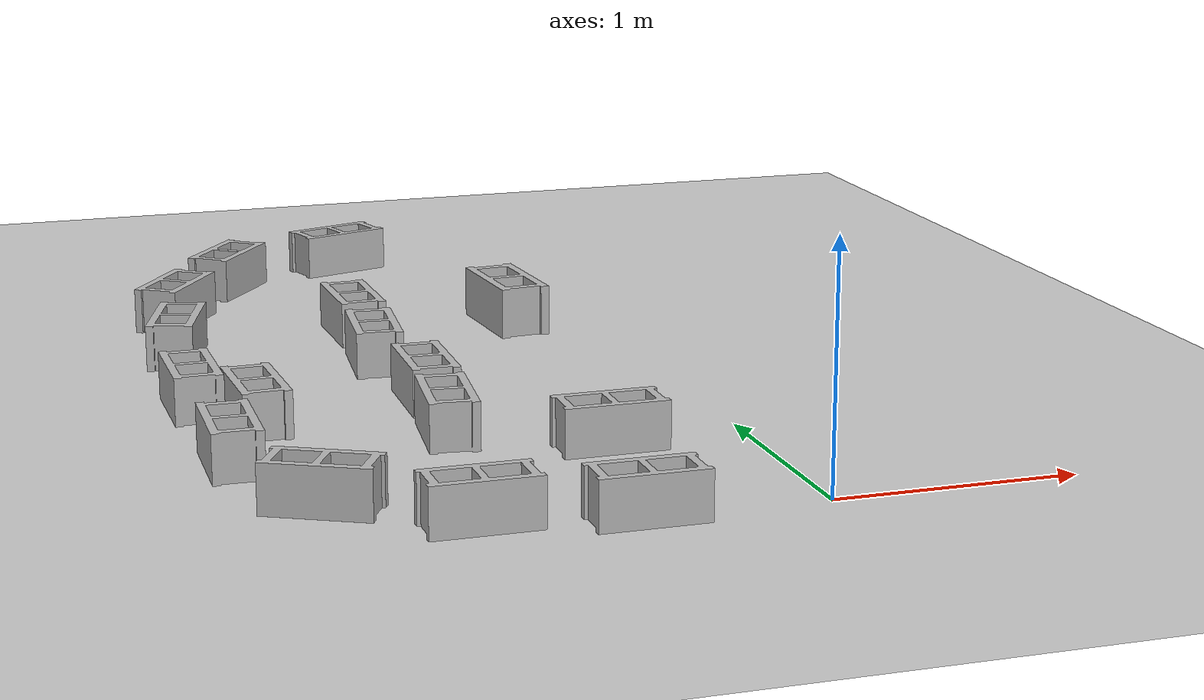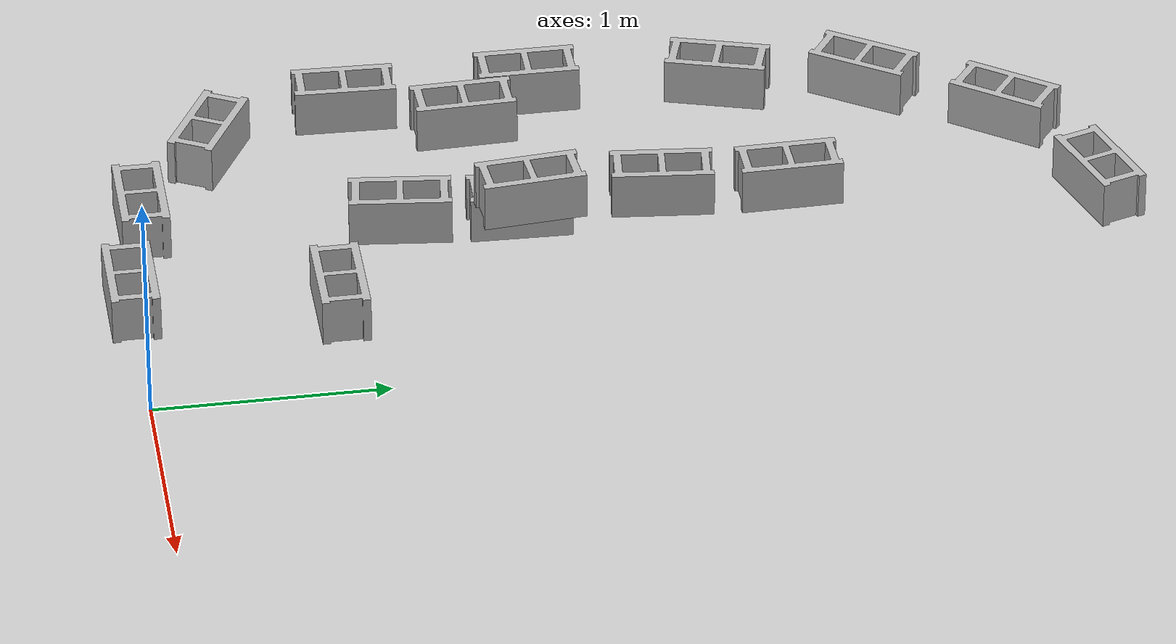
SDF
<sdf version="1.6">
 <world name="default">
  <model name="ground_plane">
   <static>1</static>
   <link name="link">
    <collision name="collision">
     <geometry><plane><normal>0 0 1</normal><size>100 100</size></plane></geometry>
     <surface><friction><ode><mu>100</mu><mu2>50</mu2></ode></friction></surface>
    </collision>
    <visual name="visual">
     <cast_shadows>0</cast_shadows>
     <geometry><plane><normal>0 0 1</normal><size>100 100</size></plane></geometry>
     <material>
      <script><uri>file://media/materials/scripts/gazebo.material</uri><name>Gazebo/Grey</name></script>
     </material>
    </visual>
   </link>
  </model>
  <model name="cinder_block">
   <link name="link">
    <inertial>
     <pose>0 0 0.1016 0 -0 0</pose>
     <mass>5</mass>
     <inertia>
      <ixx>0.028705</ixx>
      <ixy>0</ixy>
      <iyy>0.073708</iyy>
      <ixz>0</ixz>
      <iyz>0</iyz>
      <izz>0.06908</izz>
     </inertia>
    </inertial>
    <visual name="visual">
     <geometry><mesh><uri>model://cinder_block/meshes/cinder_block.dae</uri></mesh></geometry>
    </visual>
    <collision name="left">
     <pose>0 -0.08465 0.1016 0 -0 0</pose>
     <geometry><box><size>0.43495 0.0339 0.2032</size></box></geometry>
     <surface>
      <contact><ode><max_vel>0.1</max_vel><min_depth>0.001</min_depth></ode></contact>
      <friction><ode><mu>1</mu><mu2>1</mu2></ode></friction>
     </surface>
    </collision>
    <collision name="right">
     <pose>0 0.08465 0.1016 0 -0 0</pose>
     <geometry><box><size>0.43495 0.0339 0.2032</size></box></geometry>
     <surface>
      <contact><ode><max_vel>0.1</max_vel><min_depth>0.001</min_depth></ode></contact>
      <friction><ode><mu>1</mu><mu2>1</mu2></ode></friction>
     </surface>
    </collision>
    <collision name="front">
     <pose>0.18625 0 0.1016 0 -0 0</pose>
     <geometry><box><size>0.0339 0.1354 0.203</size></box></geometry>
     <surface>
      <contact><ode><max_vel>0.1</max_vel><min_depth>0.001</min_depth></ode></contact>
      <friction><ode><mu>1</mu><mu2>1</mu2></ode></friction>
     </surface>
    </collision>
    <collision name="middle">
     <pose>0 0 0.1016 0 -0 0</pose>
     <geometry><box><size>0.0339 0.1354 0.203</size></box></geometry>
     <surface>
      <contact><ode><max_vel>0.1</max_vel><min_depth>0.001</min_depth></ode></contact>
      <friction><ode><mu>1</mu><mu2>1</mu2></ode></friction>
     </surface>
    </collision>
    <collision name="back">
     <pose>-0.18625 0 0.1016 0 -0 0</pose>
     <geometry><box><size>0.0339 0.1354 0.203</size></box></geometry>
     <surface>
      <contact><ode><max_vel>0.1</max_vel><min_depth>0.001</min_depth></ode></contact>
      <friction><ode><mu>1</mu><mu2>1</mu2></ode></friction>
     </surface>
    </collision>
   </link>
   <pose>-0.720374 -2.1e-05 -6e-06 -1e-06 2.9e-05 0</pose>
  </model>
  <model name="cinder_block_0">
   <link name="link">
    <inertial>
     <pose>0 0 0.1016 0 -0 0</pose>
     <mass>5</mass>
     <inertia>
      <ixx>0.028705</ixx>
      <ixy>0</ixy>
      <iyy>0.073708</iyy>
      <ixz>0</ixz>
      <iyz>0</iyz>
      <izz>0.06908</izz>
     </inertia>
    </inertial>
    <visual name="visual">
     <geometry><mesh><uri>model://cinder_block/meshes/cinder_block.dae</uri></mesh></geometry>
    </visual>
    <collision name="left">
     <pose>0 -0.08465 0.1016 0 -0 0</pose>
     <geometry><box><size>0.43495 0.0339 0.2032</size></box></geometry>
     <surface>
      <contact><ode><max_vel>0.1</max_vel><min_depth>0.001</min_depth></ode></contact>
      <friction><ode><mu>1</mu><mu2>1</mu2></ode></friction>
     </surface>
    </collision>
    <collision name="right">
     <pose>0 0.08465 0.1016 0 -0 0</pose>
     <geometry><box><size>0.43495 0.0339 0.2032</size></box></geometry>
     <surface>
      <contact><ode><max_vel>0.1</max_vel><min_depth>0.001</min_depth></ode></contact>
      <friction><ode><mu>1</mu><mu2>1</mu2></ode></friction>
     </surface>
    </collision>
    <collision name="front">
     <pose>0.18625 0 0.1016 0 -0 0</pose>
     <geometry><box><size>0.0339 0.1354 0.203</size></box></geometry>
     <surface>
      <contact><ode><max_vel>0.1</max_vel><min_depth>0.001</min_depth></ode></contact>
      <friction><ode><mu>1</mu><mu2>1</mu2></ode></friction>
     </surface>
    </collision>
    <collision name="middle">
     <pose>0 0 0.1016 0 -0 0</pose>
     <geometry><box><size>0.0339 0.1354 0.203</size></box></geometry>
     <surface>
      <contact><ode><max_vel>0.1</max_vel><min_depth>0.001</min_depth></ode></contact>
      <friction><ode><mu>1</mu><mu2>1</mu2></ode></friction>
     </surface>
    </collision>
    <collision name="back">
     <pose>-0.18625 0 0.1016 0 -0 0</pose>
     <geometry><box><size>0.0339 0.1354 0.203</size></box></geometry>
     <surface>
      <contact><ode><max_vel>0.1</max_vel><min_depth>0.001</min_depth></ode></contact>
      <friction><ode><mu>1</mu><mu2>1</mu2></ode></friction>
     </surface>
    </collision>
   </link>
   <pose>-1.31103 0.104421 -6e-06 -1e-06 2.9e-05 0</pose>
  </model>
  <model name="cinder_block_1">
   <link name="link">
    <inertial>
     <pose>0 0 0.1016 0 -0 0</pose>
     <mass>5</mass>
     <inertia>
      <ixx>0.028705</ixx>
      <ixy>0</ixy>
      <iyy>0.073708</iyy>
      <ixz>0</ixz>
      <iyz>0</iyz>
      <izz>0.06908</izz>
     </inertia>
    </inertial>
    <visual name="visual">
     <geometry><mesh><uri>model://cinder_block/meshes/cinder_block.dae</uri></mesh></geometry>
    </visual>
    <collision name="left">
     <pose>0 -0.08465 0.1016 0 -0 0</pose>
     <geometry><box><size>0.43495 0.0339 0.2032</size></box></geometry>
     <surface>
      <contact><ode><max_vel>0.1</max_vel><min_depth>0.001</min_depth></ode></contact>
      <friction><ode><mu>1</mu><mu2>1</mu2></ode></friction>
     </surface>
    </collision>
    <collision name="right">
     <pose>0 0.08465 0.1016 0 -0 0</pose>
     <geometry><box><size>0.43495 0.0339 0.2032</size></box></geometry>
     <surface>
      <contact><ode><max_vel>0.1</max_vel><min_depth>0.001</min_depth></ode></contact>
      <friction><ode><mu>1</mu><mu2>1</mu2></ode></friction>
     </surface>
    </collision>
    <collision name="front">
     <pose>0.18625 0 0.1016 0 -0 0</pose>
     <geometry><box><size>0.0339 0.1354 0.203</size></box></geometry>
     <surface>
      <contact><ode><max_vel>0.1</max_vel><min_depth>0.001</min_depth></ode></contact>
      <friction><ode><mu>1</mu><mu2>1</mu2></ode></friction>
     </surface>
    </collision>
    <collision name="middle">
     <pose>0 0 0.1016 0 -0 0</pose>
     <geometry><box><size>0.0339 0.1354 0.203</size></box></geometry>
     <surface>
      <contact><ode><max_vel>0.1</max_vel><min_depth>0.001</min_depth></ode></contact>
      <friction><ode><mu>1</mu><mu2>1</mu2></ode></friction>
     </surface>
    </collision>
    <collision name="back">
     <pose>-0.18625 0 0.1016 0 -0 0</pose>
     <geometry><box><size>0.0339 0.1354 0.203</size></box></geometry>
     <surface>
      <contact><ode><max_vel>0.1</max_vel><min_depth>0.001</min_depth></ode></contact>
      <friction><ode><mu>1</mu><mu2>1</mu2></ode></friction>
     </surface>
    </collision>
   </link>
   <pose>-1.8114 0.44481 -6e-06 -1e-05 2.5e-05 -0.487627</pose>
  </model>
  <model name="cinder_block_7">
   <link name="link">
    <inertial>
     <pose>0 0 0.1016 0 -0 0</pose>
     <mass>5</mass>
     <inertia>
      <ixx>0.028705</ixx>
      <ixy>0</ixy>
      <iyy>0.073708</iyy>
      <ixz>0</ixz>
      <iyz>0</iyz>
      <izz>0.06908</izz>
     </inertia>
    </inertial>
    <visual name="visual">
     <geometry><mesh><uri>model://cinder_block/meshes/cinder_block.dae</uri></mesh></geometry>
    </visual>
    <collision name="left">
     <pose>0 -0.08465 0.1016 0 -0 0</pose>
     <geometry><box><size>0.43495 0.0339 0.2032</size></box></geometry>
     <surface>
      <contact><ode><max_vel>0.1</max_vel><min_depth>0.001</min_depth></ode></contact>
      <friction><ode><mu>1</mu><mu2>1</mu2></ode></friction>
     </surface>
    </collision>
    <collision name="right">
     <pose>0 0.08465 0.1016 0 -0 0</pose>
     <geometry><box><size>0.43495 0.0339 0.2032</size></box></geometry>
     <surface>
      <contact><ode><max_vel>0.1</max_vel><min_depth>0.001</min_depth></ode></contact>
      <friction><ode><mu>1</mu><mu2>1</mu2></ode></friction>
     </surface>
    </collision>
    <collision name="front">
     <pose>0.18625 0 0.1016 0 -0 0</pose>
     <geometry><box><size>0.0339 0.1354 0.203</size></box></geometry>
     <surface>
      <contact><ode><max_vel>0.1</max_vel><min_depth>0.001</min_depth></ode></contact>
      <friction><ode><mu>1</mu><mu2>1</mu2></ode></friction>
     </surface>
    </collision>
    <collision name="middle">
     <pose>0 0 0.1016 0 -0 0</pose>
     <geometry><box><size>0.0339 0.1354 0.203</size></box></geometry>
     <surface>
      <contact><ode><max_vel>0.1</max_vel><min_depth>0.001</min_depth></ode></contact>
      <friction><ode><mu>1</mu><mu2>1</mu2></ode></friction>
     </surface>
    </collision>
    <collision name="back">
     <pose>-0.18625 0 0.1016 0 -0 0</pose>
     <geometry><box><size>0.0339 0.1354 0.203</size></box></geometry>
     <surface>
      <contact><ode><max_vel>0.1</max_vel><min_depth>0.001</min_depth></ode></contact>
      <friction><ode><mu>1</mu><mu2>1</mu2></ode></friction>
     </surface>
    </collision>
   </link>
   <pose>-2.04034 1.05442 -6e-06 -3e-05 -1e-06 -1.59941</pose>
  </model>
  <model name="cinder_block_8">
   <link name="link">
    <inertial>
     <pose>0 0 0.1016 0 -0 0</pose>
     <mass>5</mass>
     <inertia>
      <ixx>0.028705</ixx>
      <ixy>0</ixy>
      <iyy>0.073708</iyy>
      <ixz>0</ixz>
      <iyz>0</iyz>
      <izz>0.06908</izz>
     </inertia>
    </inertial>
    <visual name="visual">
     <geometry><mesh><uri>model://cinder_block/meshes/cinder_block.dae</uri></mesh></geometry>
    </visual>
    <collision name="left">
     <pose>0 -0.08465 0.1016 0 -0 0</pose>
     <geometry><box><size>0.43495 0.0339 0.2032</size></box></geometry>
     <surface>
      <contact><ode><max_vel>0.1</max_vel><min_depth>0.001</min_depth></ode></contact>
      <friction><ode><mu>1</mu><mu2>1</mu2></ode></friction>
     </surface>
    </collision>
    <collision name="right">
     <pose>0 0.08465 0.1016 0 -0 0</pose>
     <geometry><box><size>0.43495 0.0339 0.2032</size></box></geometry>
     <surface>
      <contact><ode><max_vel>0.1</max_vel><min_depth>0.001</min_depth></ode></contact>
      <friction><ode><mu>1</mu><mu2>1</mu2></ode></friction>
     </surface>
    </collision>
    <collision name="front">
     <pose>0.18625 0 0.1016 0 -0 0</pose>
     <geometry><box><size>0.0339 0.1354 0.203</size></box></geometry>
     <surface>
      <contact><ode><max_vel>0.1</max_vel><min_depth>0.001</min_depth></ode></contact>
      <friction><ode><mu>1</mu><mu2>1</mu2></ode></friction>
     </surface>
    </collision>
    <collision name="middle">
     <pose>0 0 0.1016 0 -0 0</pose>
     <geometry><box><size>0.0339 0.1354 0.203</size></box></geometry>
     <surface>
      <contact><ode><max_vel>0.1</max_vel><min_depth>0.001</min_depth></ode></contact>
      <friction><ode><mu>1</mu><mu2>1</mu2></ode></friction>
     </surface>
    </collision>
    <collision name="back">
     <pose>-0.18625 0 0.1016 0 -0 0</pose>
     <geometry><box><size>0.0339 0.1354 0.203</size></box></geometry>
     <surface>
      <contact><ode><max_vel>0.1</max_vel><min_depth>0.001</min_depth></ode></contact>
      <friction><ode><mu>1</mu><mu2>1</mu2></ode></friction>
     </surface>
    </collision>
   </link>
   <pose>-2.06265 1.85109 -6e-06 -3e-05 -1e-06 -1.57236</pose>
  </model>
  <model name="cinder_block_12">
   <link name="link">
    <inertial>
     <pose>0 0 0.1016 0 -0 0</pose>
     <mass>5</mass>
     <inertia>
      <ixx>0.028705</ixx>
      <ixy>0</ixy>
      <iyy>0.073708</iyy>
      <ixz>0</ixz>
      <iyz>0</iyz>
      <izz>0.06908</izz>
     </inertia>
    </inertial>
    <visual name="visual">
     <geometry><mesh><uri>model://cinder_block/meshes/cinder_block.dae</uri></mesh></geometry>
    </visual>
    <collision name="left">
     <pose>0 -0.08465 0.1016 0 -0 0</pose>
     <geometry><box><size>0.43495 0.0339 0.2032</size></box></geometry>
     <surface>
      <contact><ode><max_vel>0.1</max_vel><min_depth>0.001</min_depth></ode></contact>
      <friction><ode><mu>1</mu><mu2>1</mu2></ode></friction>
     </surface>
    </collision>
    <collision name="right">
     <pose>0 0.08465 0.1016 0 -0 0</pose>
     <geometry><box><size>0.43495 0.0339 0.2032</size></box></geometry>
     <surface>
      <contact><ode><max_vel>0.1</max_vel><min_depth>0.001</min_depth></ode></contact>
      <friction><ode><mu>1</mu><mu2>1</mu2></ode></friction>
     </surface>
    </collision>
    <collision name="front">
     <pose>0.18625 0 0.1016 0 -0 0</pose>
     <geometry><box><size>0.0339 0.1354 0.203</size></box></geometry>
     <surface>
      <contact><ode><max_vel>0.1</max_vel><min_depth>0.001</min_depth></ode></contact>
      <friction><ode><mu>1</mu><mu2>1</mu2></ode></friction>
     </surface>
    </collision>
    <collision name="middle">
     <pose>0 0 0.1016 0 -0 0</pose>
     <geometry><box><size>0.0339 0.1354 0.203</size></box></geometry>
     <surface>
      <contact><ode><max_vel>0.1</max_vel><min_depth>0.001</min_depth></ode></contact>
      <friction><ode><mu>1</mu><mu2>1</mu2></ode></friction>
     </surface>
    </collision>
    <collision name="back">
     <pose>-0.18625 0 0.1016 0 -0 0</pose>
     <geometry><box><size>0.0339 0.1354 0.203</size></box></geometry>
     <surface>
      <contact><ode><max_vel>0.1</max_vel><min_depth>0.001</min_depth></ode></contact>
      <friction><ode><mu>1</mu><mu2>1</mu2></ode></friction>
     </surface>
    </collision>
   </link>
   <pose>-0.577262 0.856201 -6e-06 -1e-06 2.8e-05 -0</pose>
  </model>
  <model name="cinder_block_13">
   <link name="link">
    <inertial>
     <pose>0 0 0.1016 0 -0 0</pose>
     <mass>5</mass>
     <inertia>
      <ixx>0.028705</ixx>
      <ixy>0</ixy>
      <iyy>0.073708</iyy>
      <ixz>0</ixz>
      <iyz>0</iyz>
      <izz>0.06908</izz>
     </inertia>
    </inertial>
    <visual name="visual">
     <geometry><mesh><uri>model://cinder_block/meshes/cinder_block.dae</uri></mesh></geometry>
    </visual>
    <collision name="left">
     <pose>0 -0.08465 0.1016 0 -0 0</pose>
     <geometry><box><size>0.43495 0.0339 0.2032</size></box></geometry>
     <surface>
      <contact><ode><max_vel>0.1</max_vel><min_depth>0.001</min_depth></ode></contact>
      <friction><ode><mu>1</mu><mu2>1</mu2></ode></friction>
     </surface>
    </collision>
    <collision name="right">
     <pose>0 0.08465 0.1016 0 -0 0</pose>
     <geometry><box><size>0.43495 0.0339 0.2032</size></box></geometry>
     <surface>
      <contact><ode><max_vel>0.1</max_vel><min_depth>0.001</min_depth></ode></contact>
      <friction><ode><mu>1</mu><mu2>1</mu2></ode></friction>
     </surface>
    </collision>
    <collision name="front">
     <pose>0.18625 0 0.1016 0 -0 0</pose>
     <geometry><box><size>0.0339 0.1354 0.203</size></box></geometry>
     <surface>
      <contact><ode><max_vel>0.1</max_vel><min_depth>0.001</min_depth></ode></contact>
      <friction><ode><mu>1</mu><mu2>1</mu2></ode></friction>
     </surface>
    </collision>
    <collision name="middle">
     <pose>0 0 0.1016 0 -0 0</pose>
     <geometry><box><size>0.0339 0.1354 0.203</size></box></geometry>
     <surface>
      <contact><ode><max_vel>0.1</max_vel><min_depth>0.001</min_depth></ode></contact>
      <friction><ode><mu>1</mu><mu2>1</mu2></ode></friction>
     </surface>
    </collision>
    <collision name="back">
     <pose>-0.18625 0 0.1016 0 -0 0</pose>
     <geometry><box><size>0.0339 0.1354 0.203</size></box></geometry>
     <surface>
      <contact><ode><max_vel>0.1</max_vel><min_depth>0.001</min_depth></ode></contact>
      <friction><ode><mu>1</mu><mu2>1</mu2></ode></friction>
     </surface>
    </collision>
   </link>
   <pose>-1.84874 1.54636 -6e-06 -2.9e-05 1e-06 -1.53726</pose>
  </model>
  <model name="cinder_block_14">
   <link name="link">
    <inertial>
     <pose>0 0 0.1016 0 -0 0</pose>
     <mass>5</mass>
     <inertia>
      <ixx>0.028705</ixx>
      <ixy>0</ixy>
      <iyy>0.073708</iyy>
      <ixz>0</ixz>
      <iyz>0</iyz>
      <izz>0.06908</izz>
     </inertia>
    </inertial>
    <visual name="visual">
     <geometry><mesh><uri>model://cinder_block/meshes/cinder_block.dae</uri></mesh></geometry>
    </visual>
    <collision name="left">
     <pose>0 -0.08465 0.1016 0 -0 0</pose>
     <geometry><box><size>0.43495 0.0339 0.2032</size></box></geometry>
     <surface>
      <contact><ode><max_vel>0.1</max_vel><min_depth>0.001</min_depth></ode></contact>
      <friction><ode><mu>1</mu><mu2>1</mu2></ode></friction>
     </surface>
    </collision>
    <collision name="right">
     <pose>0 0.08465 0.1016 0 -0 0</pose>
     <geometry><box><size>0.43495 0.0339 0.2032</size></box></geometry>
     <surface>
      <contact><ode><max_vel>0.1</max_vel><min_depth>0.001</min_depth></ode></contact>
      <friction><ode><mu>1</mu><mu2>1</mu2></ode></friction>
     </surface>
    </collision>
    <collision name="front">
     <pose>0.18625 0 0.1016 0 -0 0</pose>
     <geometry><box><size>0.0339 0.1354 0.203</size></box></geometry>
     <surface>
      <contact><ode><max_vel>0.1</max_vel><min_depth>0.001</min_depth></ode></contact>
      <friction><ode><mu>1</mu><mu2>1</mu2></ode></friction>
     </surface>
    </collision>
    <collision name="middle">
     <pose>0 0 0.1016 0 -0 0</pose>
     <geometry><box><size>0.0339 0.1354 0.203</size></box></geometry>
     <surface>
      <contact><ode><max_vel>0.1</max_vel><min_depth>0.001</min_depth></ode></contact>
      <friction><ode><mu>1</mu><mu2>1</mu2></ode></friction>
     </surface>
    </collision>
    <collision name="back">
     <pose>-0.18625 0 0.1016 0 -0 0</pose>
     <geometry><box><size>0.0339 0.1354 0.203</size></box></geometry>
     <surface>
      <contact><ode><max_vel>0.1</max_vel><min_depth>0.001</min_depth></ode></contact>
      <friction><ode><mu>1</mu><mu2>1</mu2></ode></friction>
     </surface>
    </collision>
   </link>
   <pose>-0.760176 1.6809 0.309529 0 -0 1.65816</pose>
  </model>
  <model name="cinder_block_21">
   <link name="link">
    <inertial>
     <pose>0 0 0.1016 0 -0 0</pose>
     <mass>5</mass>
     <inertia>
      <ixx>0.028705</ixx>
      <ixy>0</ixy>
      <iyy>0.073708</iyy>
      <ixz>0</ixz>
      <iyz>0</iyz>
      <izz>0.06908</izz>
     </inertia>
    </inertial>
    <visual name="visual">
     <geometry><mesh><uri>model://cinder_block/meshes/cinder_block.dae</uri></mesh></geometry>
    </visual>
    <collision name="left">
     <pose>0 -0.08465 0.1016 0 -0 0</pose>
     <geometry><box><size>0.43495 0.0339 0.2032</size></box></geometry>
     <surface>
      <contact><ode><max_vel>0.1</max_vel><min_depth>0.001</min_depth></ode></contact>
      <friction><ode><mu>1</mu><mu2>1</mu2></ode></friction>
     </surface>
    </collision>
    <collision name="right">
     <pose>0 0.08465 0.1016 0 -0 0</pose>
     <geometry><box><size>0.43495 0.0339 0.2032</size></box></geometry>
     <surface>
      <contact><ode><max_vel>0.1</max_vel><min_depth>0.001</min_depth></ode></contact>
      <friction><ode><mu>1</mu><mu2>1</mu2></ode></friction>
     </surface>
    </collision>
    <collision name="front">
     <pose>0.18625 0 0.1016 0 -0 0</pose>
     <geometry><box><size>0.0339 0.1354 0.203</size></box></geometry>
     <surface>
      <contact><ode><max_vel>0.1</max_vel><min_depth>0.001</min_depth></ode></contact>
      <friction><ode><mu>1</mu><mu2>1</mu2></ode></friction>
     </surface>
    </collision>
    <collision name="middle">
     <pose>0 0 0.1016 0 -0 0</pose>
     <geometry><box><size>0.0339 0.1354 0.203</size></box></geometry>
     <surface>
      <contact><ode><max_vel>0.1</max_vel><min_depth>0.001</min_depth></ode></contact>
      <friction><ode><mu>1</mu><mu2>1</mu2></ode></friction>
     </surface>
    </collision>
    <collision name="back">
     <pose>-0.18625 0 0.1016 0 -0 0</pose>
     <geometry><box><size>0.0339 0.1354 0.203</size></box></geometry>
     <surface>
      <contact><ode><max_vel>0.1</max_vel><min_depth>0.001</min_depth></ode></contact>
      <friction><ode><mu>1</mu><mu2>1</mu2></ode></friction>
     </surface>
    </collision>
   </link>
   <pose>-0.957554 4.14361 0 0 -0 0.311894</pose>
  </model>
  <model name="cinder_block_22">
   <link name="link">
    <inertial>
     <pose>0 0 0.1016 0 -0 0</pose>
     <mass>5</mass>
     <inertia>
      <ixx>0.028705</ixx>
      <ixy>0</ixy>
      <iyy>0.073708</iyy>
      <ixz>0</ixz>
      <iyz>0</iyz>
      <izz>0.06908</izz>
     </inertia>
    </inertial>
    <visual name="visual">
     <geometry><mesh><uri>model://cinder_block/meshes/cinder_block.dae</uri></mesh></geometry>
    </visual>
    <collision name="left">
     <pose>0 -0.08465 0.1016 0 -0 0</pose>
     <geometry><box><size>0.43495 0.0339 0.2032</size></box></geometry>
     <surface>
      <contact><ode><max_vel>0.1</max_vel><min_depth>0.001</min_depth></ode></contact>
      <friction><ode><mu>1</mu><mu2>1</mu2></ode></friction>
     </surface>
    </collision>
    <collision name="right">
     <pose>0 0.08465 0.1016 0 -0 0</pose>
     <geometry><box><size>0.43495 0.0339 0.2032</size></box></geometry>
     <surface>
      <contact><ode><max_vel>0.1</max_vel><min_depth>0.001</min_depth></ode></contact>
      <friction><ode><mu>1</mu><mu2>1</mu2></ode></friction>
     </surface>
    </collision>
    <collision name="front">
     <pose>0.18625 0 0.1016 0 -0 0</pose>
     <geometry><box><size>0.0339 0.1354 0.203</size></box></geometry>
     <surface>
      <contact><ode><max_vel>0.1</max_vel><min_depth>0.001</min_depth></ode></contact>
      <friction><ode><mu>1</mu><mu2>1</mu2></ode></friction>
     </surface>
    </collision>
    <collision name="middle">
     <pose>0 0 0.1016 0 -0 0</pose>
     <geometry><box><size>0.0339 0.1354 0.203</size></box></geometry>
     <surface>
      <contact><ode><max_vel>0.1</max_vel><min_depth>0.001</min_depth></ode></contact>
      <friction><ode><mu>1</mu><mu2>1</mu2></ode></friction>
     </surface>
    </collision>
    <collision name="back">
     <pose>-0.18625 0 0.1016 0 -0 0</pose>
     <geometry><box><size>0.0339 0.1354 0.203</size></box></geometry>
     <surface>
      <contact><ode><max_vel>0.1</max_vel><min_depth>0.001</min_depth></ode></contact>
      <friction><ode><mu>1</mu><mu2>1</mu2></ode></friction>
     </surface>
    </collision>
   </link>
   <pose>-1.56465 3.85347 0 0 -0 0.934526</pose>
  </model>
  <model name="cinder_block_23">
   <link name="link">
    <inertial>
     <pose>0 0 0.1016 0 -0 0</pose>
     <mass>5</mass>
     <inertia>
      <ixx>0.028705</ixx>
      <ixy>0</ixy>
      <iyy>0.073708</iyy>
      <ixz>0</ixz>
      <iyz>0</iyz>
      <izz>0.06908</izz>
     </inertia>
    </inertial>
    <visual name="visual">
     <geometry><mesh><uri>model://cinder_block/meshes/cinder_block.dae</uri></mesh></geometry>
    </visual>
    <collision name="left">
     <pose>0 -0.08465 0.1016 0 -0 0</pose>
     <geometry><box><size>0.43495 0.0339 0.2032</size></box></geometry>
     <surface>
      <contact><ode><max_vel>0.1</max_vel><min_depth>0.001</min_depth></ode></contact>
      <friction><ode><mu>1</mu><mu2>1</mu2></ode></friction>
     </surface>
    </collision>
    <collision name="right">
     <pose>0 0.08465 0.1016 0 -0 0</pose>
     <geometry><box><size>0.43495 0.0339 0.2032</size></box></geometry>
     <surface>
      <contact><ode><max_vel>0.1</max_vel><min_depth>0.001</min_depth></ode></contact>
      <friction><ode><mu>1</mu><mu2>1</mu2></ode></friction>
     </surface>
    </collision>
    <collision name="front">
     <pose>0.18625 0 0.1016 0 -0 0</pose>
     <geometry><box><size>0.0339 0.1354 0.203</size></box></geometry>
     <surface>
      <contact><ode><max_vel>0.1</max_vel><min_depth>0.001</min_depth></ode></contact>
      <friction><ode><mu>1</mu><mu2>1</mu2></ode></friction>
     </surface>
    </collision>
    <collision name="middle">
     <pose>0 0 0.1016 0 -0 0</pose>
     <geometry><box><size>0.0339 0.1354 0.203</size></box></geometry>
     <surface>
      <contact><ode><max_vel>0.1</max_vel><min_depth>0.001</min_depth></ode></contact>
      <friction><ode><mu>1</mu><mu2>1</mu2></ode></friction>
     </surface>
    </collision>
    <collision name="back">
     <pose>-0.18625 0 0.1016 0 -0 0</pose>
     <geometry><box><size>0.0339 0.1354 0.203</size></box></geometry>
     <surface>
      <contact><ode><max_vel>0.1</max_vel><min_depth>0.001</min_depth></ode></contact>
      <friction><ode><mu>1</mu><mu2>1</mu2></ode></friction>
     </surface>
    </collision>
   </link>
   <pose>-1.90462 3.30054 0 0 -0 0.978229</pose>
  </model>
  <model name="cinder_block_24">
   <link name="link">
    <inertial>
     <pose>0 0 0.1016 0 -0 0</pose>
     <mass>5</mass>
     <inertia>
      <ixx>0.028705</ixx>
      <ixy>0</ixy>
      <iyy>0.073708</iyy>
      <ixz>0</ixz>
      <iyz>0</iyz>
      <izz>0.06908</izz>
     </inertia>
    </inertial>
    <visual name="visual">
     <geometry><mesh><uri>model://cinder_block/meshes/cinder_block.dae</uri></mesh></geometry>
    </visual>
    <collision name="left">
     <pose>0 -0.08465 0.1016 0 -0 0</pose>
     <geometry><box><size>0.43495 0.0339 0.2032</size></box></geometry>
     <surface>
      <contact><ode><max_vel>0.1</max_vel><min_depth>0.001</min_depth></ode></contact>
      <friction><ode><mu>1</mu><mu2>1</mu2></ode></friction>
     </surface>
    </collision>
    <collision name="right">
     <pose>0 0.08465 0.1016 0 -0 0</pose>
     <geometry><box><size>0.43495 0.0339 0.2032</size></box></geometry>
     <surface>
      <contact><ode><max_vel>0.1</max_vel><min_depth>0.001</min_depth></ode></contact>
      <friction><ode><mu>1</mu><mu2>1</mu2></ode></friction>
     </surface>
    </collision>
    <collision name="front">
     <pose>0.18625 0 0.1016 0 -0 0</pose>
     <geometry><box><size>0.0339 0.1354 0.203</size></box></geometry>
     <surface>
      <contact><ode><max_vel>0.1</max_vel><min_depth>0.001</min_depth></ode></contact>
      <friction><ode><mu>1</mu><mu2>1</mu2></ode></friction>
     </surface>
    </collision>
    <collision name="middle">
     <pose>0 0 0.1016 0 -0 0</pose>
     <geometry><box><size>0.0339 0.1354 0.203</size></box></geometry>
     <surface>
      <contact><ode><max_vel>0.1</max_vel><min_depth>0.001</min_depth></ode></contact>
      <friction><ode><mu>1</mu><mu2>1</mu2></ode></friction>
     </surface>
    </collision>
    <collision name="back">
     <pose>-0.18625 0 0.1016 0 -0 0</pose>
     <geometry><box><size>0.0339 0.1354 0.203</size></box></geometry>
     <surface>
      <contact><ode><max_vel>0.1</max_vel><min_depth>0.001</min_depth></ode></contact>
      <friction><ode><mu>1</mu><mu2>1</mu2></ode></friction>
     </surface>
    </collision>
   </link>
   <pose>-1.99567 2.67467 0 0 -0 1.27084</pose>
  </model>
  <model name="cinder_block_25">
   <link name="link">
    <inertial>
     <pose>0 0 0.1016 0 -0 0</pose>
     <mass>5</mass>
     <inertia>
      <ixx>0.028705</ixx>
      <ixy>0</ixy>
      <iyy>0.073708</iyy>
      <ixz>0</ixz>
      <iyz>0</iyz>
      <izz>0.06908</izz>
     </inertia>
    </inertial>
    <visual name="visual">
     <geometry><mesh><uri>model://cinder_block/meshes/cinder_block.dae</uri></mesh></geometry>
    </visual>
    <collision name="left">
     <pose>0 -0.08465 0.1016 0 -0 0</pose>
     <geometry><box><size>0.43495 0.0339 0.2032</size></box></geometry>
     <surface>
      <contact><ode><max_vel>0.1</max_vel><min_depth>0.001</min_depth></ode></contact>
      <friction><ode><mu>1</mu><mu2>1</mu2></ode></friction>
     </surface>
    </collision>
    <collision name="right">
     <pose>0 0.08465 0.1016 0 -0 0</pose>
     <geometry><box><size>0.43495 0.0339 0.2032</size></box></geometry>
     <surface>
      <contact><ode><max_vel>0.1</max_vel><min_depth>0.001</min_depth></ode></contact>
      <friction><ode><mu>1</mu><mu2>1</mu2></ode></friction>
     </surface>
    </collision>
    <collision name="front">
     <pose>0.18625 0 0.1016 0 -0 0</pose>
     <geometry><box><size>0.0339 0.1354 0.203</size></box></geometry>
     <surface>
      <contact><ode><max_vel>0.1</max_vel><min_depth>0.001</min_depth></ode></contact>
      <friction><ode><mu>1</mu><mu2>1</mu2></ode></friction>
     </surface>
    </collision>
    <collision name="middle">
     <pose>0 0 0.1016 0 -0 0</pose>
     <geometry><box><size>0.0339 0.1354 0.203</size></box></geometry>
     <surface>
      <contact><ode><max_vel>0.1</max_vel><min_depth>0.001</min_depth></ode></contact>
      <friction><ode><mu>1</mu><mu2>1</mu2></ode></friction>
     </surface>
    </collision>
    <collision name="back">
     <pose>-0.18625 0 0.1016 0 -0 0</pose>
     <geometry><box><size>0.0339 0.1354 0.203</size></box></geometry>
     <surface>
      <contact><ode><max_vel>0.1</max_vel><min_depth>0.001</min_depth></ode></contact>
      <friction><ode><mu>1</mu><mu2>1</mu2></ode></friction>
     </surface>
    </collision>
   </link>
   <pose>-1.18892 2.30343 0 0 0 -1.67063</pose>
  </model>
  <model name="cinder_block_26">
   <link name="link">
    <inertial>
     <pose>0 0 0.1016 0 -0 0</pose>
     <mass>5</mass>
     <inertia>
      <ixx>0.028705</ixx>
      <ixy>0</ixy>
      <iyy>0.073708</iyy>
      <ixz>0</ixz>
      <iyz>0</iyz>
      <izz>0.06908</izz>
     </inertia>
    </inertial>
    <visual name="visual">
     <geometry><mesh><uri>model://cinder_block/meshes/cinder_block.dae</uri></mesh></geometry>
    </visual>
    <collision name="left">
     <pose>0 -0.08465 0.1016 0 -0 0</pose>
     <geometry><box><size>0.43495 0.0339 0.2032</size></box></geometry>
     <surface>
      <contact><ode><max_vel>0.1</max_vel><min_depth>0.001</min_depth></ode></contact>
      <friction><ode><mu>1</mu><mu2>1</mu2></ode></friction>
     </surface>
    </collision>
    <collision name="right">
     <pose>0 0.08465 0.1016 0 -0 0</pose>
     <geometry><box><size>0.43495 0.0339 0.2032</size></box></geometry>
     <surface>
      <contact><ode><max_vel>0.1</max_vel><min_depth>0.001</min_depth></ode></contact>
      <friction><ode><mu>1</mu><mu2>1</mu2></ode></friction>
     </surface>
    </collision>
    <collision name="front">
     <pose>0.18625 0 0.1016 0 -0 0</pose>
     <geometry><box><size>0.0339 0.1354 0.203</size></box></geometry>
     <surface>
      <contact><ode><max_vel>0.1</max_vel><min_depth>0.001</min_depth></ode></contact>
      <friction><ode><mu>1</mu><mu2>1</mu2></ode></friction>
     </surface>
    </collision>
    <collision name="middle">
     <pose>0 0 0.1016 0 -0 0</pose>
     <geometry><box><size>0.0339 0.1354 0.203</size></box></geometry>
     <surface>
      <contact><ode><max_vel>0.1</max_vel><min_depth>0.001</min_depth></ode></contact>
      <friction><ode><mu>1</mu><mu2>1</mu2></ode></friction>
     </surface>
    </collision>
    <collision name="back">
     <pose>-0.18625 0 0.1016 0 -0 0</pose>
     <geometry><box><size>0.0339 0.1354 0.203</size></box></geometry>
     <surface>
      <contact><ode><max_vel>0.1</max_vel><min_depth>0.001</min_depth></ode></contact>
      <friction><ode><mu>1</mu><mu2>1</mu2></ode></friction>
     </surface>
    </collision>
   </link>
   <pose>-1.16301 2.84296 0 0 0 -1.55042</pose>
  </model>
  <model name="cinder_block_27">
   <link name="link">
    <inertial>
     <pose>0 0 0.1016 0 -0 0</pose>
     <mass>5</mass>
     <inertia>
      <ixx>0.028705</ixx>
      <ixy>0</ixy>
      <iyy>0.073708</iyy>
      <ixz>0</ixz>
      <iyz>0</iyz>
      <izz>0.06908</izz>
     </inertia>
    </inertial>
    <visual name="visual">
     <geometry><mesh><uri>model://cinder_block/meshes/cinder_block.dae</uri></mesh></geometry>
    </visual>
    <collision name="left">
     <pose>0 -0.08465 0.1016 0 -0 0</pose>
     <geometry><box><size>0.43495 0.0339 0.2032</size></box></geometry>
     <surface>
      <contact><ode><max_vel>0.1</max_vel><min_depth>0.001</min_depth></ode></contact>
      <friction><ode><mu>1</mu><mu2>1</mu2></ode></friction>
     </surface>
    </collision>
    <collision name="right">
     <pose>0 0.08465 0.1016 0 -0 0</pose>
     <geometry><box><size>0.43495 0.0339 0.2032</size></box></geometry>
     <surface>
      <contact><ode><max_vel>0.1</max_vel><min_depth>0.001</min_depth></ode></contact>
      <friction><ode><mu>1</mu><mu2>1</mu2></ode></friction>
     </surface>
    </collision>
    <collision name="front">
     <pose>0.18625 0 0.1016 0 -0 0</pose>
     <geometry><box><size>0.0339 0.1354 0.203</size></box></geometry>
     <surface>
      <contact><ode><max_vel>0.1</max_vel><min_depth>0.001</min_depth></ode></contact>
      <friction><ode><mu>1</mu><mu2>1</mu2></ode></friction>
     </surface>
    </collision>
    <collision name="middle">
     <pose>0 0 0.1016 0 -0 0</pose>
     <geometry><box><size>0.0339 0.1354 0.203</size></box></geometry>
     <surface>
      <contact><ode><max_vel>0.1</max_vel><min_depth>0.001</min_depth></ode></contact>
      <friction><ode><mu>1</mu><mu2>1</mu2></ode></friction>
     </surface>
    </collision>
    <collision name="back">
     <pose>-0.18625 0 0.1016 0 -0 0</pose>
     <geometry><box><size>0.0339 0.1354 0.203</size></box></geometry>
     <surface>
      <contact><ode><max_vel>0.1</max_vel><min_depth>0.001</min_depth></ode></contact>
      <friction><ode><mu>1</mu><mu2>1</mu2></ode></friction>
     </surface>
    </collision>
   </link>
   <pose>-1.11231 1.68371 0 0 0 -1.59577</pose>
  </model>
  <model name="cinder_block_28">
   <link name="link">
    <inertial>
     <pose>0 0 0.1016 0 -0 0</pose>
     <mass>5</mass>
     <inertia>
      <ixx>0.028705</ixx>
      <ixy>0</ixy>
      <iyy>0.073708</iyy>
      <ixz>0</ixz>
      <iyz>0</iyz>
      <izz>0.06908</izz>
     </inertia>
    </inertial>
    <visual name="visual">
     <geometry><mesh><uri>model://cinder_block/meshes/cinder_block.dae</uri></mesh></geometry>
    </visual>
    <collision name="left">
     <pose>0 -0.08465 0.1016 0 -0 0</pose>
     <geometry><box><size>0.43495 0.0339 0.2032</size></box></geometry>
     <surface>
      <contact><ode><max_vel>0.1</max_vel><min_depth>0.001</min_depth></ode></contact>
      <friction><ode><mu>1</mu><mu2>1</mu2></ode></friction>
     </surface>
    </collision>
    <collision name="right">
     <pose>0 0.08465 0.1016 0 -0 0</pose>
     <geometry><box><size>0.43495 0.0339 0.2032</size></box></geometry>
     <surface>
      <contact><ode><max_vel>0.1</max_vel><min_depth>0.001</min_depth></ode></contact>
      <friction><ode><mu>1</mu><mu2>1</mu2></ode></friction>
     </surface>
    </collision>
    <collision name="front">
     <pose>0.18625 0 0.1016 0 -0 0</pose>
     <geometry><box><size>0.0339 0.1354 0.203</size></box></geometry>
     <surface>
      <contact><ode><max_vel>0.1</max_vel><min_depth>0.001</min_depth></ode></contact>
      <friction><ode><mu>1</mu><mu2>1</mu2></ode></friction>
     </surface>
    </collision>
    <collision name="middle">
     <pose>0 0 0.1016 0 -0 0</pose>
     <geometry><box><size>0.0339 0.1354 0.203</size></box></geometry>
     <surface>
      <contact><ode><max_vel>0.1</max_vel><min_depth>0.001</min_depth></ode></contact>
      <friction><ode><mu>1</mu><mu2>1</mu2></ode></friction>
     </surface>
    </collision>
    <collision name="back">
     <pose>-0.18625 0 0.1016 0 -0 0</pose>
     <geometry><box><size>0.0339 0.1354 0.203</size></box></geometry>
     <surface>
      <contact><ode><max_vel>0.1</max_vel><min_depth>0.001</min_depth></ode></contact>
      <friction><ode><mu>1</mu><mu2>1</mu2></ode></friction>
     </surface>
    </collision>
   </link>
   <pose>-1.15163 1.18173 0 0 0 -1.68119</pose>
  </model>
 </world>
</sdf>
